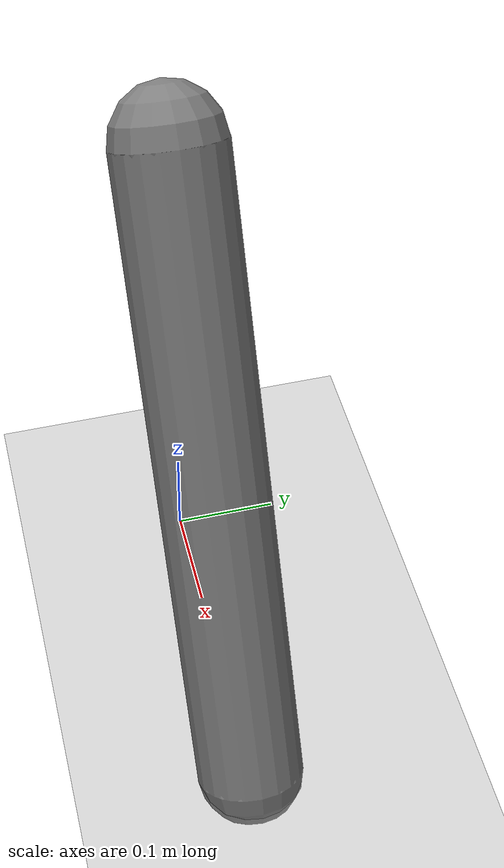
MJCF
<mujoco model="adhesion_hinge">
            <compiler angle="radian"/>
            <option gravity="0 0 -9.81" timestep="0.001"/>
            <worldbody>
                <geom type="plane" size="10 10 1"/>
                <body name="arm" pos="0 0 0.5">
                    <joint name="hinge1" type="hinge" axis="0 1 0"/>
                    <geom type="capsule" size="0.05" fromto="0 0 0 0.3 0 -0.5" mass="0.5"/>
                </body>
            </worldbody>
            <actuator>
                <adhesion name="grip" body="arm" gain="100" ctrlrange="0 1"/>
            </actuator>
        </mujoco>
